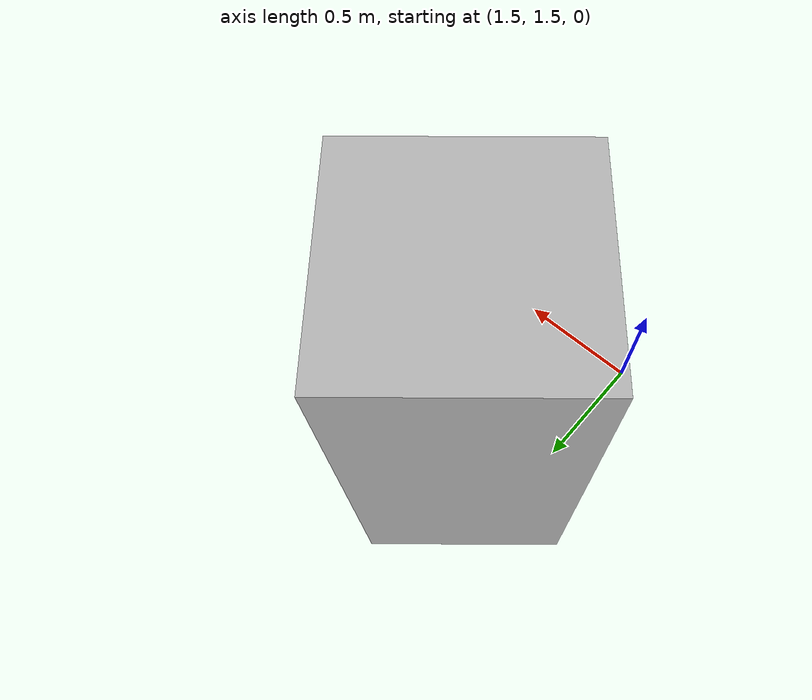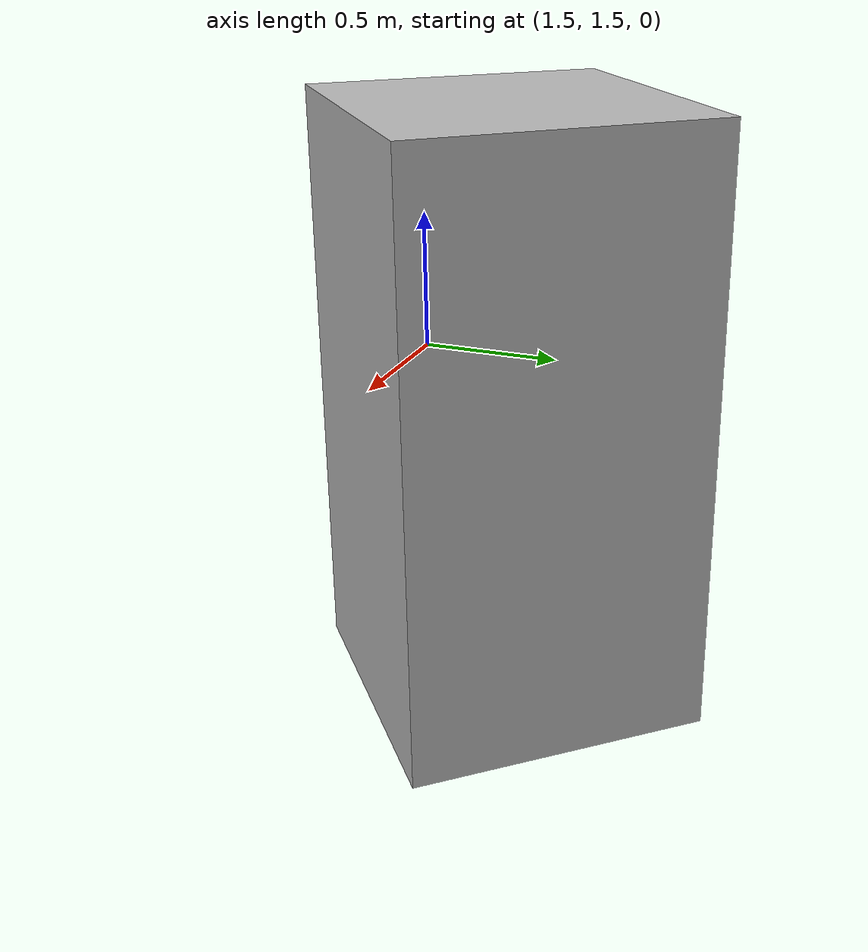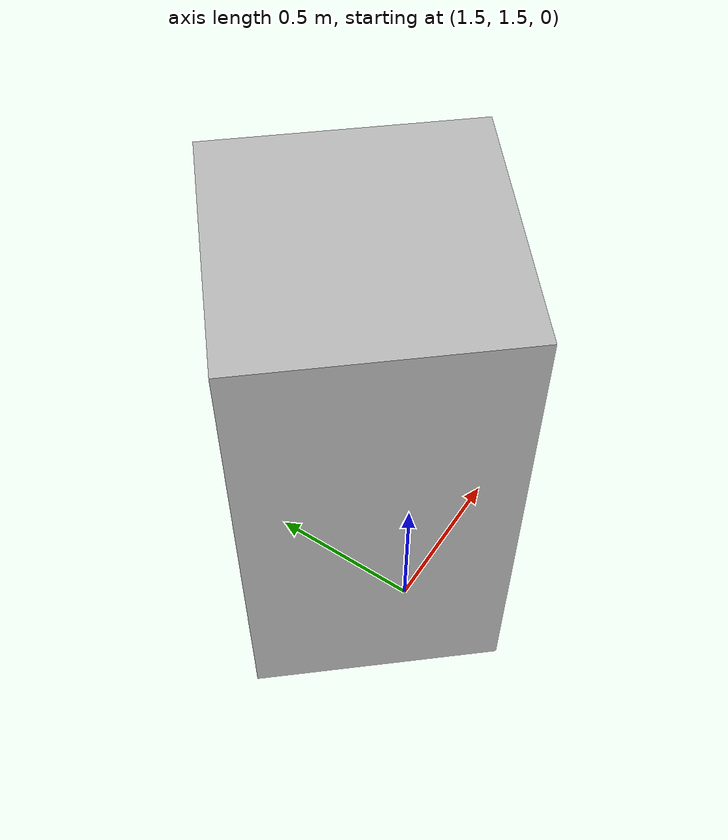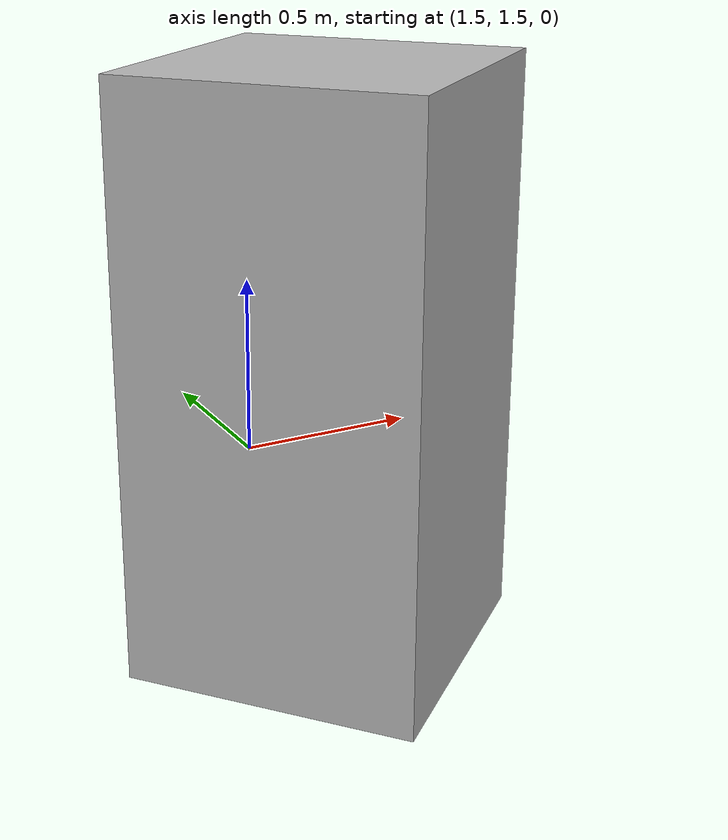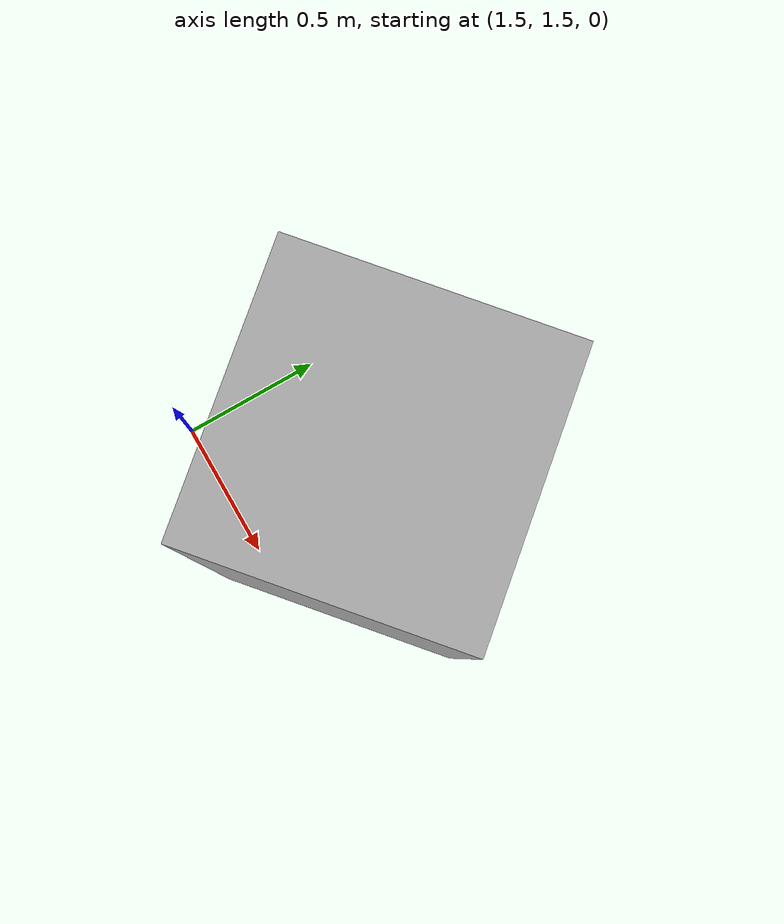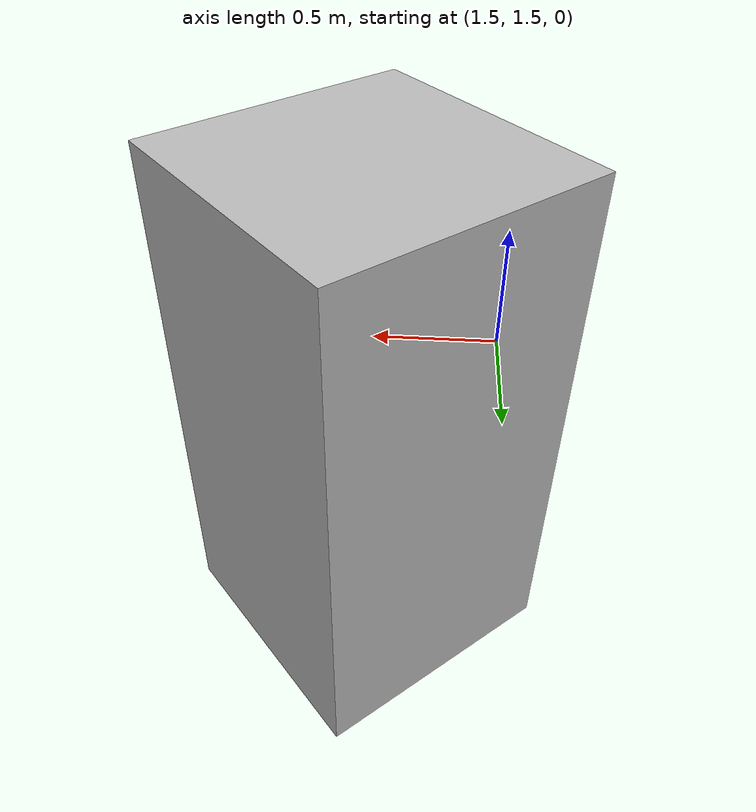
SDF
<?xml version="1.0" ?>
<sdf version="1.6">
  <world name="default">
    <include>
      <uri>model://sun</uri>
    </include>

    <model name="post">
      <static>true</static>
      <link name="link">
        <sensor name="logical_camera" type="logical_camera">
          <pose>1 1 1 0 0 0</pose>
          <logical_camera>
            <near>0.55</near>
            <far>2.5</far>
            <horizontal_fov>1.05</horizontal_fov>
            <aspect_ratio>1.8</aspect_ratio>
          </logical_camera>

          <visualize>true</visualize>
          <always_on>true</always_on>
          <update_rate>10</update_rate>
        </sensor>
      </link>
    </model>

    <model name="target_box">
      <static>true</static>
      <pose>2 2 0 0 0 0.707</pose>
      <link name="link">
        <collision name="tall_collision">
          <geometry>
            <box>
              <size>1 1 2</size>
            </box>
          </geometry>
        </collision>
        <visual name="tall_visual">
          <geometry>
            <box>
              <size>1 1 2</size>
            </box>
          </geometry>
        </visual>
      </link>
    </model>
  </world>
</sdf>
